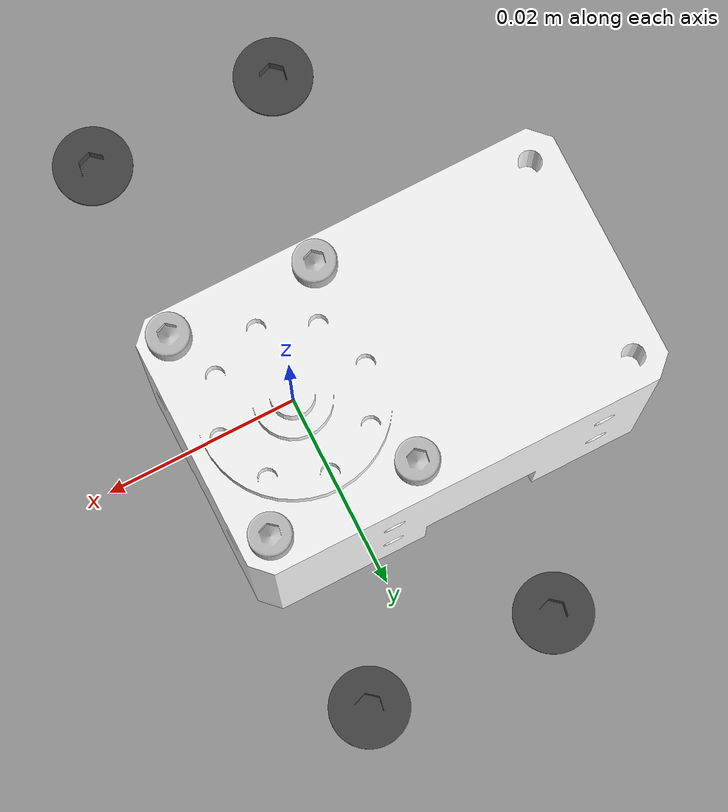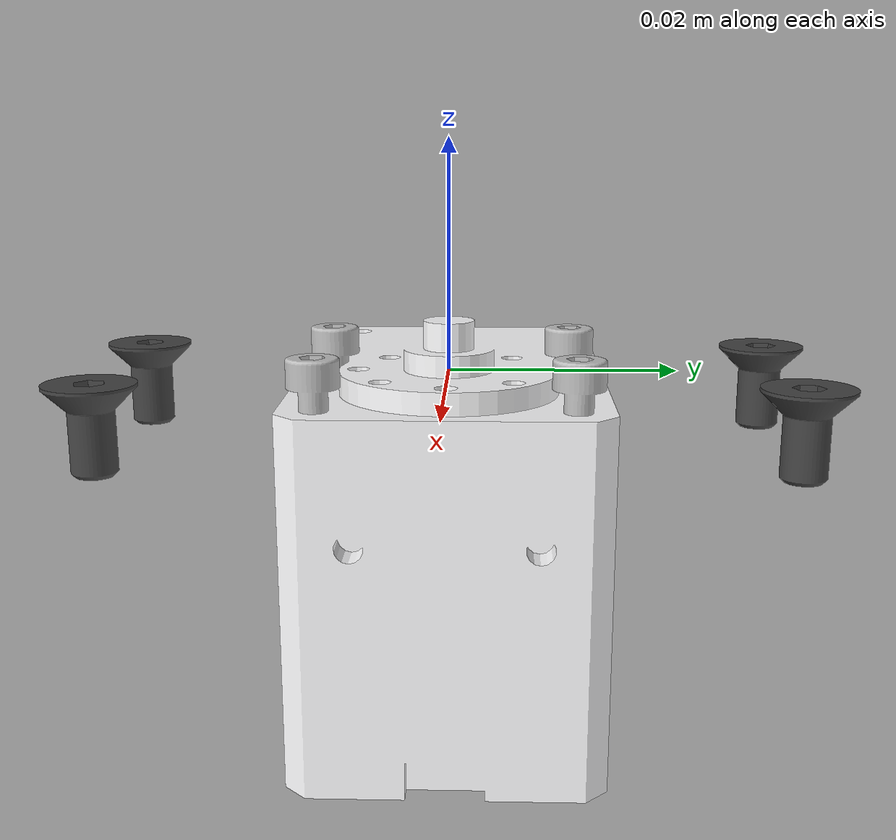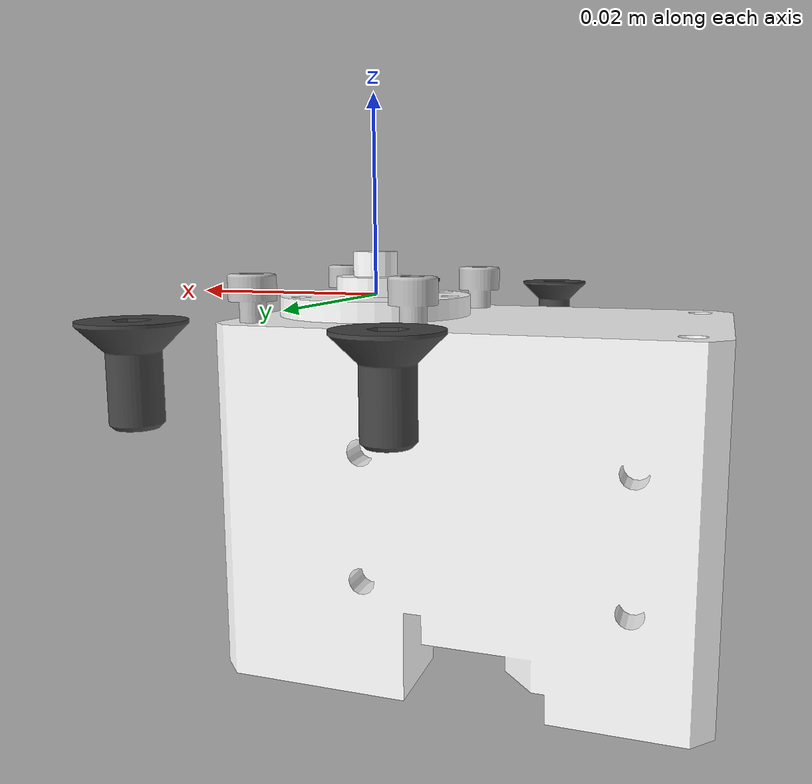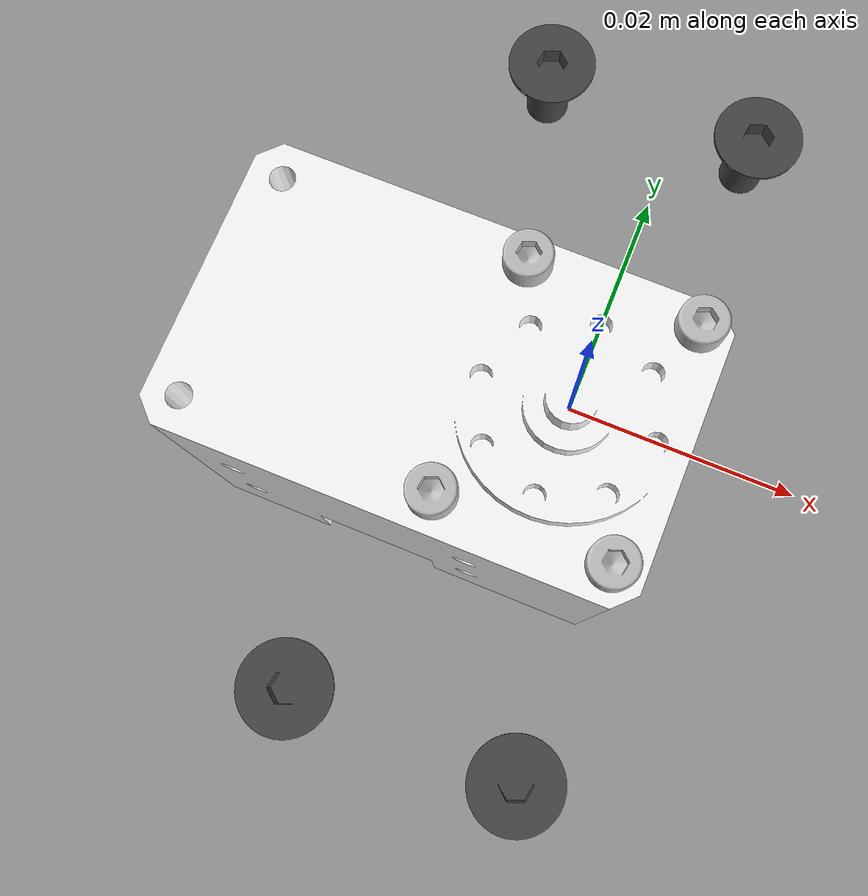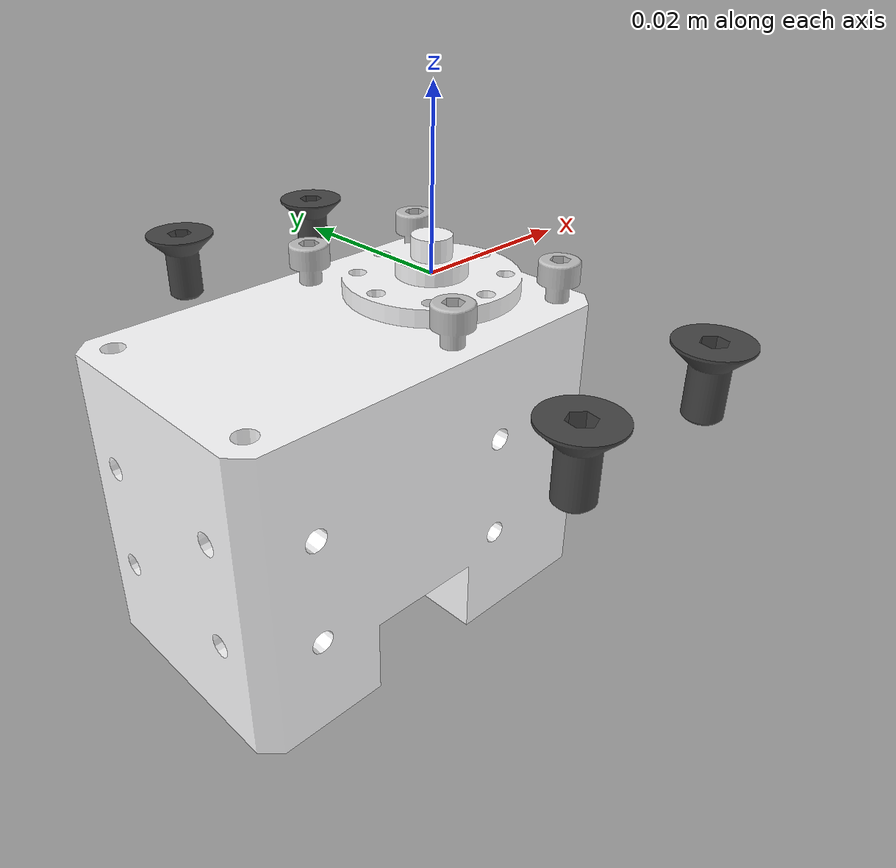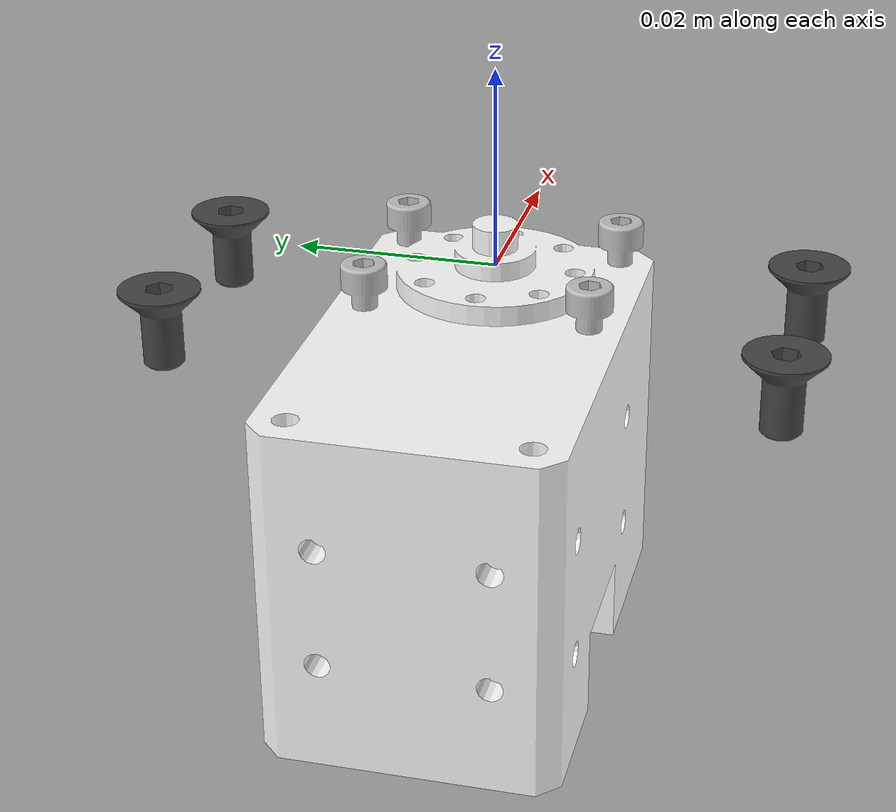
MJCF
<mujoco model="PAN_TILT_1">
  <default>
    <default class="visual">
      <geom group="2" type="mesh" contype="0" conaffinity="0"/>
    </default>
    <default class="collision">
      <geom group="3" type="mesh"/>
    </default>
  </default>
  <asset>
    <material name="191,191,191" specular="0.0" shininess="0.225" rgba="0.749020 0.749020 0.749020 1.000000"/>
    <material name="254,254,255" specular="0.0" shininess="0.225" rgba="0.996078 0.996078 1.000000 1.000000"/>
    <material name="69,69,69" specular="0.0" shininess="0.225" rgba="0.270588 0.270588 0.270588 1.000000"/>
    <mesh file="PAN_TILT_1_0.obj"/>
    <mesh file="PAN_TILT_1_1.obj"/>
    <mesh file="PAN_TILT_1_2.obj"/>
  </asset>
  <worldbody>
    <body name="PAN_TILT_1">
      <geom mesh="PAN_TILT_1_0" material="69,69,69" class="visual"/>
      <geom mesh="PAN_TILT_1_1" material="191,191,191" class="visual"/>
      <geom mesh="PAN_TILT_1_2" material="254,254,255" class="visual"/>
      <geom mesh="PAN_TILT_1_0" class="collision"/>
      <geom mesh="PAN_TILT_1_1" class="collision"/>
      <geom mesh="PAN_TILT_1_2" class="collision"/>
    </body>
  </worldbody>
</mujoco>
